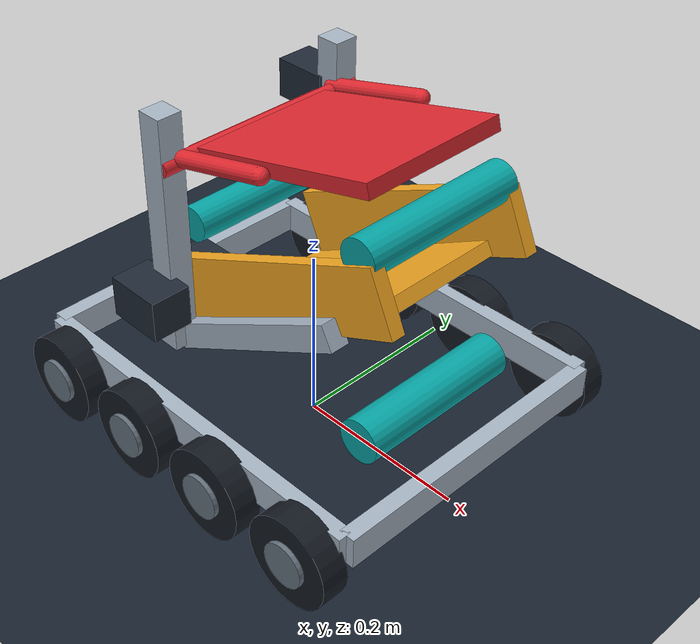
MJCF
<mujoco model="Articulated Conveyor Bridge"><compiler angle="degree" /><visual><global offwidth="800" offheight="600" /><quality offsamples="0" /><headlight ambient=".45 .45 .45" /></visual><worldbody><light pos="0 -1 3" castshadow="false" /><geom type="plane" size="2 2 .1" rgba=".09 .13 .18 1" /><geom type="box" pos="0 -0.1725 0.0758" size="0.2225 0.009 0.018" euler="0 0 0" rgba=".65 .7 .76 1" contype="0" conaffinity="0" /><geom type="box" pos="0 0.1725 0.0758" size="0.2225 0.009 0.018" euler="0 0 0" rgba=".65 .7 .76 1" contype="0" conaffinity="0" /><geom type="box" pos="-0.2225 0 0.0758" size="0.009 0.1725 0.018" euler="0 0 0" rgba=".65 .7 .76 1" contype="0" conaffinity="0" /><geom type="box" pos="0.2225 0 0.0758" size="0.009 0.1725 0.018" euler="0 0 0" rgba=".65 .7 .76 1" contype="0" conaffinity="0" /><geom type="cylinder" pos="-0.18 -0.19349999999999998 0.0508" size="0.0508 0.015" euler="90 0 0" rgba=".08 .1 .13 1" contype="0" conaffinity="0" /><geom type="cylinder" pos="-0.18 -0.2105 0.0508" size="0.024384 0.003" euler="90 0 0" rgba=".4 .45 .5 1" contype="0" conaffinity="0" /><geom type="cylinder" pos="-0.06 -0.19349999999999998 0.0508" size="0.0508 0.015" euler="90 0 0" rgba=".08 .1 .13 1" contype="0" conaffinity="0" /><geom type="cylinder" pos="-0.06 -0.2105 0.0508" size="0.024384 0.003" euler="90 0 0" rgba=".4 .45 .5 1" contype="0" conaffinity="0" /><geom type="cylinder" pos="0.06 -0.19349999999999998 0.0508" size="0.0508 0.015" euler="90 0 0" rgba=".08 .1 .13 1" contype="0" conaffinity="0" /><geom type="cylinder" pos="0.06 -0.2105 0.0508" size="0.024384 0.003" euler="90 0 0" rgba=".4 .45 .5 1" contype="0" conaffinity="0" /><geom type="cylinder" pos="0.18 -0.19349999999999998 0.0508" size="0.0508 0.015" euler="90 0 0" rgba=".08 .1 .13 1" contype="0" conaffinity="0" /><geom type="cylinder" pos="0.18 -0.2105 0.0508" size="0.024384 0.003" euler="90 0 0" rgba=".4 .45 .5 1" contype="0" conaffinity="0" /><geom type="cylinder" pos="-0.18 0.19349999999999998 0.0508" size="0.0508 0.015" euler="90 0 0" rgba=".08 .1 .13 1" contype="0" conaffinity="0" /><geom type="cylinder" pos="-0.18 0.2105 0.0508" size="0.024384 0.003" euler="90 0 0" rgba=".4 .45 .5 1" contype="0" conaffinity="0" /><geom type="cylinder" pos="-0.06 0.19349999999999998 0.0508" size="0.0508 0.015" euler="90 0 0" rgba=".08 .1 .13 1" contype="0" conaffinity="0" /><geom type="cylinder" pos="-0.06 0.2105 0.0508" size="0.024384 0.003" euler="90 0 0" rgba=".4 .45 .5 1" contype="0" conaffinity="0" /><geom type="cylinder" pos="0.06 0.19349999999999998 0.0508" size="0.0508 0.015" euler="90 0 0" rgba=".08 .1 .13 1" contype="0" conaffinity="0" /><geom type="cylinder" pos="0.06 0.2105 0.0508" size="0.024384 0.003" euler="90 0 0" rgba=".4 .45 .5 1" contype="0" conaffinity="0" /><geom type="cylinder" pos="0.18 0.19349999999999998 0.0508" size="0.0508 0.015" euler="90 0 0" rgba=".08 .1 .13 1" contype="0" conaffinity="0" /><geom type="cylinder" pos="0.18 0.2105 0.0508" size="0.024384 0.003" euler="90 0 0" rgba=".4 .45 .5 1" contype="0" conaffinity="0" /><geom type="box" pos="-0.135 0.0 0.1008" size="0.07 0.022 0.015" euler="0 0 0" rgba=".12 .16 .21 1" contype="0" conaffinity="0" /><geom type="box" pos="0.028 0.105 0.178" size="0.125 0.011 0.014" euler="0.0 -29.0 0.0" rgba=".65 .7 .76 1" contype="0" conaffinity="0" /><geom type="box" pos="0.028 -0.105 0.178" size="0.125 0.011 0.014" euler="0.0 -29.0 0.0" rgba=".65 .7 .76 1" contype="0" conaffinity="0" /><geom type="box" pos="0.04 0.0 0.188" size="0.135 0.0875 0.008" euler="0.0 -29.0 0.0" rgba=".96 .66 .13 1" contype="0" conaffinity="0" /><geom type="cylinder" pos="0.16 0.0 0.116" size="0.024 0.095" euler="90.0 0.0 0.0" rgba=".03 .65 .65 1" contype="0" conaffinity="0" /><geom type="cylinder" pos="-0.075 0.0 0.25" size="0.019 0.095" euler="90.0 0.0 0.0" rgba=".03 .65 .65 1" contype="0" conaffinity="0" /><geom type="box" pos="-0.086 0.115 0.245" size="0.014 0.014 0.135" euler="0.0 0.0 0.0" rgba=".65 .7 .76 1" contype="0" conaffinity="0" /><geom type="box" pos="-0.086 -0.115 0.245" size="0.014 0.014 0.135" euler="0.0 0.0 0.0" rgba=".65 .7 .76 1" contype="0" conaffinity="0" /><geom type="cylinder" pos="-0.076 0.0 0.326" size="0.009 0.1275" euler="90.0 0.0 0.0" rgba=".87 .16 .19 1" contype="0" conaffinity="0" /><geom type="box" pos="0.035 0.0 0.355" size="0.1225 0.085 0.008" euler="0.0 -15.0 0.0" rgba=".87 .16 .19 1" contype="0" conaffinity="0" /><geom type="cylinder" pos="0.153 0.0 0.323" size="0.021 0.095" euler="90.0 0.0 0.0" rgba=".03 .65 .65 1" contype="0" conaffinity="0" /><geom type="capsule" pos="-0.02 0.105 0.345" size="0.009 0.0635" euler="0.0 75.0 0.0" rgba=".87 .16 .19 1" contype="0" conaffinity="0" /><geom type="capsule" pos="-0.02 -0.105 0.345" size="0.009 0.0635" euler="0.0 75.0 0.0" rgba=".87 .16 .19 1" contype="0" conaffinity="0" /><geom type="box" pos="0.048 0.091 0.23" size="0.1525 0.008 0.035" euler="0.0 -25.0 0.0" rgba=".96 .66 .13 1" contype="0" conaffinity="0" /><geom type="box" pos="0.048 -0.091 0.23" size="0.1525 0.008 0.035" euler="0.0 -25.0 0.0" rgba=".96 .66 .13 1" contype="0" conaffinity="0" /><geom type="box" pos="-0.085 -0.145 0.177" size="0.0325 0.023 0.023" euler="0.0 0.0 0.0" rgba=".12 .16 .21 1" contype="0" conaffinity="0" /><geom type="box" pos="-0.125 0.12 0.314" size="0.031 0.022 0.022" euler="0.0 0.0 0.0" rgba=".12 .16 .21 1" contype="0" conaffinity="0" /></worldbody></mujoco>
